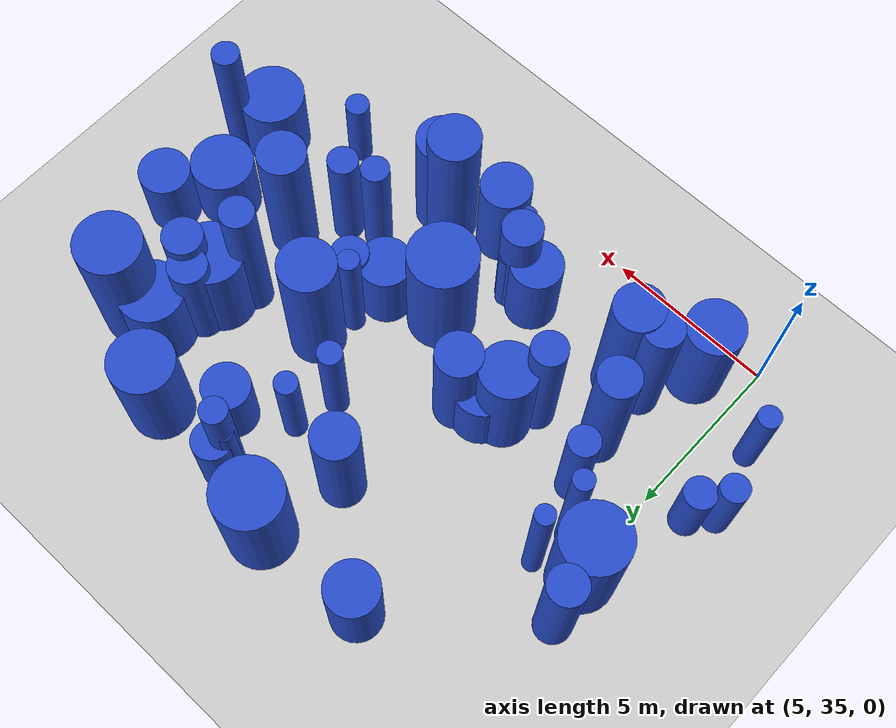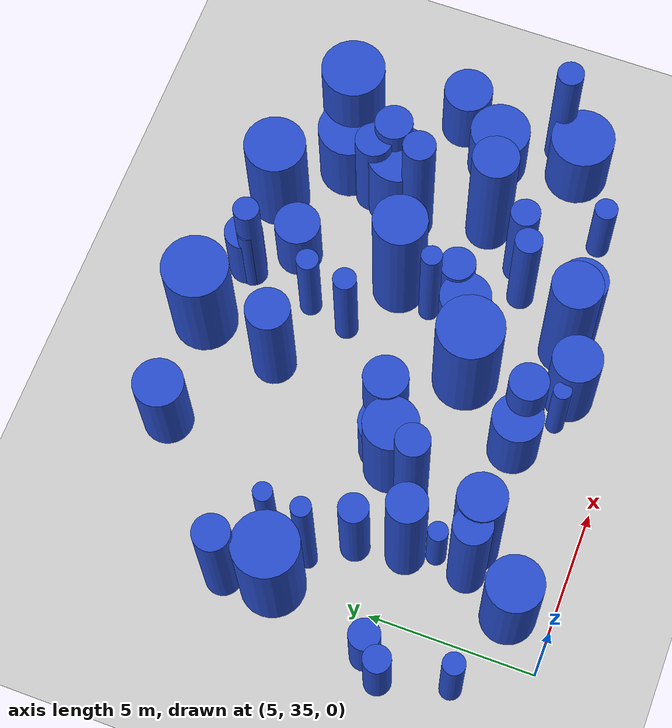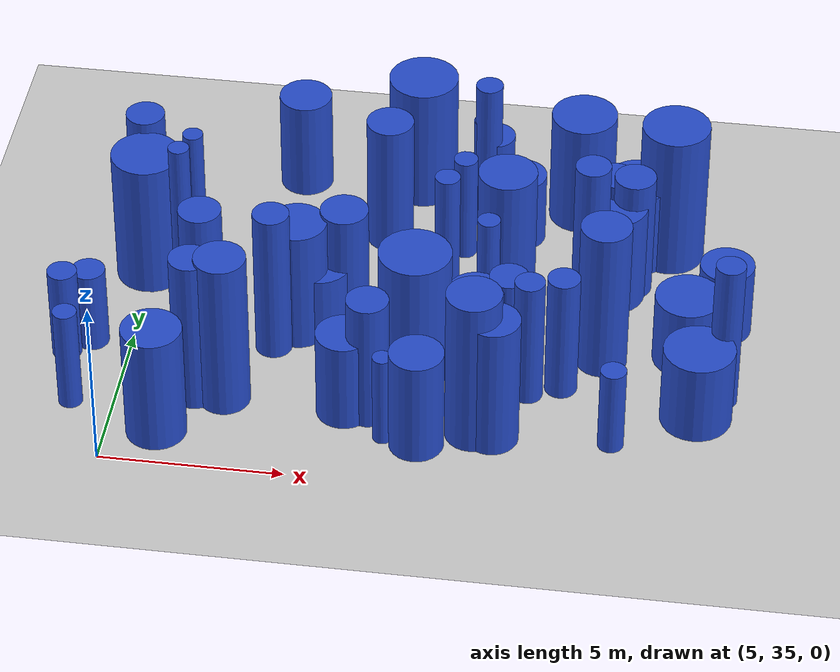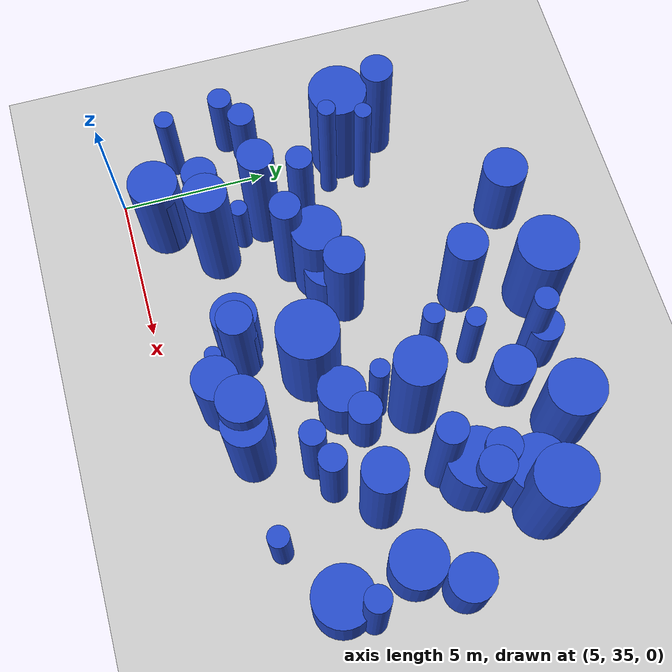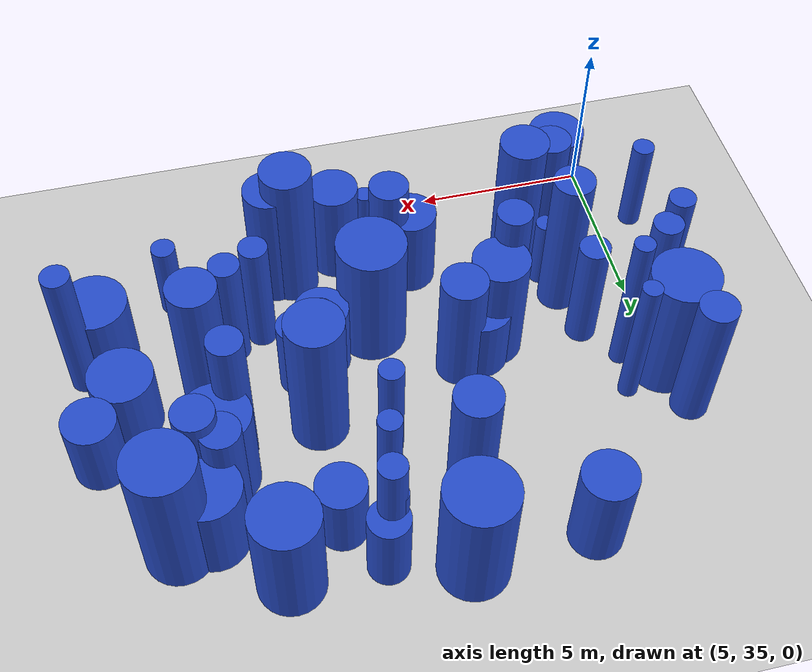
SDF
<sdf version="1.6">
 <world name="default">
  <model name="ground_plane">
   <static>1</static>
   <link name="link">
    <collision name="collision">
     <geometry><plane><normal>0 0 1</normal><size>100 100</size></plane></geometry>
     <surface><friction><ode><mu>100</mu><mu2>50</mu2></ode></friction></surface>
    </collision>
    <visual name="visual">
     <cast_shadows>0</cast_shadows>
     <geometry><plane><normal>0 0 1</normal><size>100 100</size></plane></geometry>
     <material>
      <script><uri>file://media/materials/scripts/gazebo.material</uri><name>Gazebo/Grey</name></script>
     </material>
    </visual>
   </link>
  </model>
  <model name="0">
   <static>0</static>
   <link name="link">
    <inertial>
     <mass>2</mass>
     <inertia><ixx>1.43734</ixx><ixy>0</ixy><ixz>0</ixz><iyy>1.43734</iyy><iyz>0</iyz><izz>0.944565</izz></inertia>
    </inertial>
    <collision name="collision">
     <geometry><cylinder><length>2.40632</length><radius>0.971888</radius></cylinder></geometry>
     <surface><contact><collide_without_contact>1</collide_without_contact></contact></surface>
    </collision>
    <visual name="visual">
     <geometry><cylinder><length>2.40632</length><radius>0.971888</radius></cylinder></geometry>
     <material>
      <script><uri>file://media/materials/scripts/gazebo.material</uri><name>Gazebo/Blue</name></script>
     </material>
    </visual>
    <gravity>0</gravity>
   </link>
   <pose>20.5384 38.7875 1.20316 0 -0 0</pose>
  </model>
  <model name="17">
   <static>0</static>
   <link name="link">
    <inertial>
     <mass>2</mass>
     <inertia><ixx>1.23789</ixx><ixy>0</ixy><ixz>0</ixz><iyy>1.23789</iyy><iyz>0</iyz><izz>0.598154</izz></inertia>
    </inertial>
    <collision name="collision">
     <geometry><cylinder><length>2.37337</length><radius>0.773404</radius></cylinder></geometry>
     <surface><contact><collide_without_contact>1</collide_without_contact></contact></surface>
    </collision>
    <visual name="visual">
     <geometry><cylinder><length>2.37337</length><radius>0.773404</radius></cylinder></geometry>
     <material>
      <script><uri>file://media/materials/scripts/gazebo.material</uri><name>Gazebo/Blue</name></script>
     </material>
    </visual>
    <gravity>0</gravity>
   </link>
   <pose>14.3822 40.423 1.18668 0 -0 0</pose>
  </model>
  <model name="22">
   <static>0</static>
   <link name="link">
    <inertial>
     <mass>2</mass>
     <inertia>
      <ixx>0.996712</ixx>
      <ixy>0</ixy>
      <ixz>0</ixz>
      <iyy>0.996712</iyy>
      <iyz>0</iyz>
      <izz>0.087716</izz>
     </inertia>
    </inertial>
    <collision name="collision">
     <geometry><cylinder><length>2.39105</length><radius>0.296169</radius></cylinder></geometry>
     <surface><contact><collide_without_contact>1</collide_without_contact></contact></surface>
    </collision>
    <visual name="visual">
     <geometry><cylinder><length>2.39105</length><radius>0.296169</radius></cylinder></geometry>
     <material>
      <script><uri>file://media/materials/scripts/gazebo.material</uri><name>Gazebo/Blue</name></script>
     </material>
    </visual>
    <gravity>0</gravity>
   </link>
   <pose>7.34966 38.7949 1.19553 0 -0 0</pose>
  </model>
  <model name="28">
   <static>0</static>
   <link name="link">
    <inertial>
     <mass>2</mass>
     <inertia>
      <ixx>4.08418</ixx>
      <ixy>0</ixy>
      <ixz>0</ixz>
      <iyy>4.08418</iyy>
      <iyz>0</iyz>
      <izz>0.0857833</izz>
     </inertia>
    </inertial>
    <collision name="collision">
     <geometry><cylinder><length>4.9242</length><radius>0.292888</radius></cylinder></geometry>
     <surface><contact><collide_without_contact>1</collide_without_contact></contact></surface>
    </collision>
    <visual name="visual">
     <geometry><cylinder><length>4.9242</length><radius>0.292888</radius></cylinder></geometry>
     <material>
      <script><uri>file://media/materials/scripts/gazebo.material</uri><name>Gazebo/Blue</name></script>
     </material>
    </visual>
    <gravity>0</gravity>
   </link>
   <pose>5.98766 42.2378 2.4621 0 -0 0</pose>
  </model>
  <model name="35">
   <static>0</static>
   <link name="link">
    <inertial>
     <mass>2</mass>
     <inertia><ixx>2.06592</ixx><ixy>0</ixy><ixz>0</ixz><iyy>2.06592</iyy><iyz>0</iyz><izz>0.920991</izz></inertia>
    </inertial>
    <collision name="collision">
     <geometry><cylinder><length>3.10364</length><radius>0.959683</radius></cylinder></geometry>
     <surface><contact><collide_without_contact>1</collide_without_contact></contact></surface>
    </collision>
    <visual name="visual">
     <geometry><cylinder><length>3.10364</length><radius>0.959683</radius></cylinder></geometry>
     <material>
      <script><uri>file://media/materials/scripts/gazebo.material</uri><name>Gazebo/Blue</name></script>
     </material>
    </visual>
    <gravity>0</gravity>
   </link>
   <pose>17.7601 43.7207 1.55182 0 -0 0</pose>
  </model>
  <model name="39">
   <static>0</static>
   <link name="link">
    <inertial>
     <mass>2</mass>
     <inertia><ixx>2.41207</ixx><ixy>0</ixy><ixz>0</ixz><iyy>2.41207</iyy><iyz>0</iyz><izz>0.674875</izz></inertia>
    </inertial>
    <collision name="collision">
     <geometry><cylinder><length>3.52814</length><radius>0.821508</radius></cylinder></geometry>
     <surface><contact><collide_without_contact>1</collide_without_contact></contact></surface>
    </collision>
    <visual name="visual">
     <geometry><cylinder><length>3.52814</length><radius>0.821508</radius></cylinder></geometry>
     <material>
      <script><uri>file://media/materials/scripts/gazebo.material</uri><name>Gazebo/Blue</name></script>
     </material>
    </visual>
    <gravity>0</gravity>
   </link>
   <pose>6.34437 36.277 1.76407 0 -0 0</pose>
  </model>
  <model name="41">
   <static>0</static>
   <link name="link">
    <inertial>
     <mass>2</mass>
     <inertia>
      <ixx>2.58319</ixx>
      <ixy>0</ixy>
      <ixz>0</ixz>
      <iyy>2.58319</iyy>
      <iyz>0</iyz>
      <izz>0.0988008</izz>
     </inertia>
    </inertial>
    <collision name="collision">
     <geometry><cylinder><length>3.89907</length><radius>0.314326</radius></cylinder></geometry>
     <surface><contact><collide_without_contact>1</collide_without_contact></contact></surface>
    </collision>
    <visual name="visual">
     <geometry><cylinder><length>3.89907</length><radius>0.314326</radius></cylinder></geometry>
     <material>
      <script><uri>file://media/materials/scripts/gazebo.material</uri><name>Gazebo/Blue</name></script>
     </material>
    </visual>
    <gravity>0</gravity>
   </link>
   <pose>14.5714 41.5767 1.94954 0 -0 0</pose>
  </model>
  <model name="46">
   <static>0</static>
   <link name="link">
    <inertial>
     <mass>2</mass>
     <inertia><ixx>2.99386</ixx><ixy>0</ixy><ixz>0</ixz><iyy>2.99386</iyy><iyz>0</iyz><izz>0.435719</izz></inertia>
    </inertial>
    <collision name="collision">
     <geometry><cylinder><length>4.08118</length><radius>0.66009</radius></cylinder></geometry>
     <surface><contact><collide_without_contact>1</collide_without_contact></contact></surface>
    </collision>
    <visual name="visual">
     <geometry><cylinder><length>4.08118</length><radius>0.66009</radius></cylinder></geometry>
     <material>
      <script><uri>file://media/materials/scripts/gazebo.material</uri><name>Gazebo/Blue</name></script>
     </material>
    </visual>
    <gravity>0</gravity>
   </link>
   <pose>11.3429 45.3423 2.04059 0 -0 0</pose>
  </model>
  <model name="52">
   <static>0</static>
   <link name="link">
    <inertial>
     <mass>2</mass>
     <inertia><ixx>2.62274</ixx><ixy>0</ixy><ixz>0</ixz><iyy>2.62274</iyy><iyz>0</iyz><izz>0.169861</izz></inertia>
    </inertial>
    <collision name="collision">
     <geometry><cylinder><length>3.90216</length><radius>0.412142</radius></cylinder></geometry>
     <surface><contact><collide_without_contact>1</collide_without_contact></contact></surface>
    </collision>
    <visual name="visual">
     <geometry><cylinder><length>3.90216</length><radius>0.412142</radius></cylinder></geometry>
     <material>
      <script><uri>file://media/materials/scripts/gazebo.material</uri><name>Gazebo/Blue</name></script>
     </material>
    </visual>
    <gravity>0</gravity>
   </link>
   <pose>15.9682 39.1143 1.95108 0 -0 0</pose>
  </model>
  <model name="74">
   <static>0</static>
   <link name="link">
    <inertial>
     <mass>2</mass>
     <inertia><ixx>4.12328</ixx><ixy>0</ixy><ixz>0</ixz><iyy>4.12328</iyy><iyz>0</iyz><izz>0.560126</izz></inertia>
    </inertial>
    <collision name="collision">
     <geometry><cylinder><length>4.80201</length><radius>0.748416</radius></cylinder></geometry>
     <surface><contact><collide_without_contact>1</collide_without_contact></contact></surface>
    </collision>
    <visual name="visual">
     <geometry><cylinder><length>4.80201</length><radius>0.748416</radius></cylinder></geometry>
     <material>
      <script><uri>file://media/materials/scripts/gazebo.material</uri><name>Gazebo/Blue</name></script>
     </material>
    </visual>
    <gravity>0</gravity>
   </link>
   <pose>14.6995 37.3284 2.40101 0 -0 0</pose>
  </model>
  <model name="119">
   <static>0</static>
   <link name="link">
    <inertial>
     <mass>2</mass>
     <inertia><ixx>2.38078</ixx><ixy>0</ixy><ixz>0</ixz><iyy>2.38078</iyy><iyz>0</iyz><izz>0.195556</izz></inertia>
    </inertial>
    <collision name="collision">
     <geometry><cylinder><length>3.70108</length><radius>0.442218</radius></cylinder></geometry>
     <surface><contact><collide_without_contact>1</collide_without_contact></contact></surface>
    </collision>
    <visual name="visual">
     <geometry><cylinder><length>3.70108</length><radius>0.442218</radius></cylinder></geometry>
     <material>
      <script><uri>file://media/materials/scripts/gazebo.material</uri><name>Gazebo/Blue</name></script>
     </material>
    </visual>
    <gravity>0</gravity>
   </link>
   <pose>6.79355 41.0742 1.85054 0 -0 0</pose>
  </model>
  <model name="126">
   <static>0</static>
   <link name="link">
    <inertial>
     <mass>2</mass>
     <inertia><ixx>3.16923</ixx><ixy>0</ixy><ixz>0</ixz><iyy>3.16923</iyy><iyz>0</iyz><izz>0.99439</izz></inertia>
    </inertial>
    <collision name="collision">
     <geometry><cylinder><length>4.00402</length><radius>0.997191</radius></cylinder></geometry>
     <surface><contact><collide_without_contact>1</collide_without_contact></contact></surface>
    </collision>
    <visual name="visual">
     <geometry><cylinder><length>4.00402</length><radius>0.997191</radius></cylinder></geometry>
     <material>
      <script><uri>file://media/materials/scripts/gazebo.material</uri><name>Gazebo/Blue</name></script>
     </material>
    </visual>
    <gravity>0</gravity>
   </link>
   <pose>12.8116 39.7959 2.00201 0 -0 0</pose>
  </model>
  <model name="144">
   <static>0</static>
   <link name="link">
    <inertial>
     <mass>2</mass>
     <inertia><ixx>1.21797</ixx><ixy>0</ixy><ixz>0</ixz><iyy>1.21797</iyy><iyz>0</iyz><izz>0.296682</izz></inertia>
    </inertial>
    <collision name="collision">
     <geometry><cylinder><length>2.53334</length><radius>0.544685</radius></cylinder></geometry>
     <surface><contact><collide_without_contact>1</collide_without_contact></contact></surface>
    </collision>
    <visual name="visual">
     <geometry><cylinder><length>2.53334</length><radius>0.544685</radius></cylinder></geometry>
     <material>
      <script><uri>file://media/materials/scripts/gazebo.material</uri><name>Gazebo/Blue</name></script>
     </material>
    </visual>
    <gravity>0</gravity>
   </link>
   <pose>15.2183 40.9566 1.26667 0 -0 0</pose>
  </model>
  <model name="145">
   <static>0</static>
   <link name="link">
    <inertial>
     <mass>2</mass>
     <inertia><ixx>1.72</ixx><ixy>0</ixy><ixz>0</ixz><iyy>1.72</iyy><iyz>0</iyz><izz>0.363739</izz></inertia>
    </inertial>
    <collision name="collision">
     <geometry><cylinder><length>3.03789</length><radius>0.603108</radius></cylinder></geometry>
     <surface><contact><collide_without_contact>1</collide_without_contact></contact></surface>
    </collision>
    <visual name="visual">
     <geometry><cylinder><length>3.03789</length><radius>0.603108</radius></cylinder></geometry>
     <material>
      <script><uri>file://media/materials/scripts/gazebo.material</uri><name>Gazebo/Blue</name></script>
     </material>
    </visual>
    <gravity>0</gravity>
   </link>
   <pose>6.54316 36.3832 1.51895 0 -0 0</pose>
  </model>
  <model name="151">
   <static>0</static>
   <link name="link">
    <inertial>
     <mass>2</mass>
     <inertia><ixx>4.1732</ixx><ixy>0</ixy><ixz>0</ixz><iyy>4.1732</iyy><iyz>0</iyz><izz>0.497658</izz></inertia>
    </inertial>
    <collision name="collision">
     <geometry><cylinder><length>4.85245</length><radius>0.705449</radius></cylinder></geometry>
     <surface><contact><collide_without_contact>1</collide_without_contact></contact></surface>
    </collision>
    <visual name="visual">
     <geometry><cylinder><length>4.85245</length><radius>0.705449</radius></cylinder></geometry>
     <material>
      <script><uri>file://media/materials/scripts/gazebo.material</uri><name>Gazebo/Blue</name></script>
     </material>
    </visual>
    <gravity>0</gravity>
   </link>
   <pose>7.91534 37.8162 2.42622 0 -0 0</pose>
  </model>
  <model name="155">
   <static>0</static>
   <link name="link">
    <inertial>
     <mass>2</mass>
     <inertia><ixx>3.02453</ixx><ixy>0</ixy><ixz>0</ixz><iyy>3.02453</iyy><iyz>0</iyz><izz>0.528307</izz></inertia>
    </inertial>
    <collision name="collision">
     <geometry><cylinder><length>4.06967</length><radius>0.726847</radius></cylinder></geometry>
     <surface><contact><collide_without_contact>1</collide_without_contact></contact></surface>
    </collision>
    <visual name="visual">
     <geometry><cylinder><length>4.06967</length><radius>0.726847</radius></cylinder></geometry>
     <material>
      <script><uri>file://media/materials/scripts/gazebo.material</uri><name>Gazebo/Blue</name></script>
     </material>
    </visual>
    <gravity>0</gravity>
   </link>
   <pose>15.2238 37.2459 2.03484 0 -0 0</pose>
  </model>
  <model name="189">
   <static>0</static>
   <link name="link">
    <inertial>
     <mass>2</mass>
     <inertia><ixx>2.68004</ixx><ixy>0</ixy><ixz>0</ixz><iyy>2.68004</iyy><iyz>0</iyz><izz>0.666747</izz></inertia>
    </inertial>
    <collision name="collision">
     <geometry><cylinder><length>3.75233</length><radius>0.816545</radius></cylinder></geometry>
     <surface><contact><collide_without_contact>1</collide_without_contact></contact></surface>
    </collision>
    <visual name="visual">
     <geometry><cylinder><length>3.75233</length><radius>0.816545</radius></cylinder></geometry>
     <material>
      <script><uri>file://media/materials/scripts/gazebo.material</uri><name>Gazebo/Blue</name></script>
     </material>
    </visual>
    <gravity>0</gravity>
   </link>
   <pose>9.43595 40.9496 1.87617 0 -0 0</pose>
  </model>
  <model name="193">
   <static>0</static>
   <link name="link">
    <inertial>
     <mass>2</mass>
     <inertia><ixx>2.65089</ixx><ixy>0</ixy><ixz>0</ixz><iyy>2.65089</iyy><iyz>0</iyz><izz>0.332017</izz></inertia>
    </inertial>
    <collision name="collision">
     <geometry><cylinder><length>3.86126</length><radius>0.576209</radius></cylinder></geometry>
     <surface><contact><collide_without_contact>1</collide_without_contact></contact></surface>
    </collision>
    <visual name="visual">
     <geometry><cylinder><length>3.86126</length><radius>0.576209</radius></cylinder></geometry>
     <material>
      <script><uri>file://media/materials/scripts/gazebo.material</uri><name>Gazebo/Blue</name></script>
     </material>
    </visual>
    <gravity>0</gravity>
   </link>
   <pose>18.3004 44.0764 1.93063 0 -0 0</pose>
  </model>
  <model name="194">
   <static>0</static>
   <link name="link">
    <inertial>
     <mass>2</mass>
     <inertia><ixx>4.05304</ixx><ixy>0</ixy><ixz>0</ixz><iyy>4.05304</iyy><iyz>0</iyz><izz>0.652866</izz></inertia>
    </inertial>
    <collision name="collision">
     <geometry><cylinder><length>4.7286</length><radius>0.808001</radius></cylinder></geometry>
     <surface><contact><collide_without_contact>1</collide_without_contact></contact></surface>
    </collision>
    <visual name="visual">
     <geometry><cylinder><length>4.7286</length><radius>0.808001</radius></cylinder></geometry>
     <material>
      <script><uri>file://media/materials/scripts/gazebo.material</uri><name>Gazebo/Blue</name></script>
     </material>
    </visual>
    <gravity>0</gravity>
   </link>
   <pose>14.9409 42.6739 2.3643 0 -0 0</pose>
  </model>
  <model name="213">
   <static>0</static>
   <link name="link">
    <inertial>
     <mass>2</mass>
     <inertia><ixx>3.94195</ixx><ixy>0</ixy><ixz>0</ixz><iyy>3.94195</iyy><iyz>0</iyz><izz>0.316712</izz></inertia>
    </inertial>
    <collision name="collision">
     <geometry><cylinder><length>4.76462</length><radius>0.562771</radius></cylinder></geometry>
     <surface><contact><collide_without_contact>1</collide_without_contact></contact></surface>
    </collision>
    <visual name="visual">
     <geometry><cylinder><length>4.76462</length><radius>0.562771</radius></cylinder></geometry>
     <material>
      <script><uri>file://media/materials/scripts/gazebo.material</uri><name>Gazebo/Blue</name></script>
     </material>
    </visual>
    <gravity>0</gravity>
   </link>
   <pose>7.11286 37.7974 2.38231 0 -0 0</pose>
  </model>
  <model name="242">
   <static>0</static>
   <link name="link">
    <inertial>
     <mass>2</mass>
     <inertia><ixx>1.17404</ixx><ixy>0</ixy><ixz>0</ixz><iyy>1.17404</iyy><iyz>0</iyz><izz>0.329321</izz></inertia>
    </inertial>
    <collision name="collision">
     <geometry><cylinder><length>2.46095</length><radius>0.573865</radius></cylinder></geometry>
     <surface><contact><collide_without_contact>1</collide_without_contact></contact></surface>
    </collision>
    <visual name="visual">
     <geometry><cylinder><length>2.46095</length><radius>0.573865</radius></cylinder></geometry>
     <material>
      <script><uri>file://media/materials/scripts/gazebo.material</uri><name>Gazebo/Blue</name></script>
     </material>
    </visual>
    <gravity>0</gravity>
   </link>
   <pose>14.0639 47.271 1.23048 0 -0 0</pose>
  </model>
  <model name="243">
   <static>0</static>
   <link name="link">
    <inertial>
     <mass>2</mass>
     <inertia><ixx>4.2741</ixx><ixy>0</ixy><ixz>0</ixz><iyy>4.2741</iyy><iyz>0</iyz><izz>0.240077</izz></inertia>
    </inertial>
    <collision name="collision">
     <geometry><cylinder><length>4.99243</length><radius>0.489977</radius></cylinder></geometry>
     <surface><contact><collide_without_contact>1</collide_without_contact></contact></surface>
    </collision>
    <visual name="visual">
     <geometry><cylinder><length>4.99243</length><radius>0.489977</radius></cylinder></geometry>
     <material>
      <script><uri>file://media/materials/scripts/gazebo.material</uri><name>Gazebo/Blue</name></script>
     </material>
    </visual>
    <gravity>0</gravity>
   </link>
   <pose>17.2259 42.9222 2.49622 0 -0 0</pose>
  </model>
  <model name="268">
   <static>0</static>
   <link name="link">
    <inertial>
     <mass>2</mass>
     <inertia><ixx>2.68272</ixx><ixy>0</ixy><ixz>0</ixz><iyy>2.68272</iyy><iyz>0</iyz><izz>0.437965</izz></inertia>
    </inertial>
    <collision name="collision">
     <geometry><cylinder><length>3.84479</length><radius>0.661789</radius></cylinder></geometry>
     <surface><contact><collide_without_contact>1</collide_without_contact></contact></surface>
    </collision>
    <visual name="visual">
     <geometry><cylinder><length>3.84479</length><radius>0.661789</radius></cylinder></geometry>
     <material>
      <script><uri>file://media/materials/scripts/gazebo.material</uri><name>Gazebo/Blue</name></script>
     </material>
    </visual>
    <gravity>0</gravity>
   </link>
   <pose>10.6363 41.5399 1.9224 0 -0 0</pose>
  </model>
  <model name="277">
   <static>0</static>
   <link name="link">
    <inertial>
     <mass>2</mass>
     <inertia><ixx>1.83227</ixx><ixy>0</ixy><ixz>0</ixz><iyy>1.83227</iyy><iyz>0</iyz><izz>0.113422</izz></inertia>
    </inertial>
    <collision name="collision">
     <geometry><cylinder><length>3.26395</length><radius>0.336781</radius></cylinder></geometry>
     <surface><contact><collide_without_contact>1</collide_without_contact></contact></surface>
    </collision>
    <visual name="visual">
     <geometry><cylinder><length>3.26395</length><radius>0.336781</radius></cylinder></geometry>
     <material>
      <script><uri>file://media/materials/scripts/gazebo.material</uri><name>Gazebo/Blue</name></script>
     </material>
    </visual>
    <gravity>0</gravity>
   </link>
   <pose>13.5131 45.0063 1.63197 0 -0 0</pose>
  </model>
  <model name="286">
   <static>0</static>
   <link name="link">
    <inertial>
     <mass>2</mass>
     <inertia><ixx>2.97201</ixx><ixy>0</ixy><ixz>0</ixz><iyy>2.97201</iyy><iyz>0</iyz><izz>0.968598</izz></inertia>
    </inertial>
    <collision name="collision">
     <geometry><cylinder><length>3.86346</length><radius>0.984174</radius></cylinder></geometry>
     <surface><contact><collide_without_contact>1</collide_without_contact></contact></surface>
    </collision>
    <visual name="visual">
     <geometry><cylinder><length>3.86346</length><radius>0.984174</radius></cylinder></geometry>
     <material>
      <script><uri>file://media/materials/scripts/gazebo.material</uri><name>Gazebo/Blue</name></script>
     </material>
    </visual>
    <gravity>0</gravity>
   </link>
   <pose>11.9458 47.8225 1.93173 0 -0 0</pose>
  </model>
  <model name="292">
   <static>0</static>
   <link name="link">
    <inertial>
     <mass>2</mass>
     <inertia><ixx>3.86972</ixx><ixy>0</ixy><ixz>0</ixz><iyy>3.86972</iyy><iyz>0</iyz><izz>0.485505</izz></inertia>
    </inertial>
    <collision name="collision">
     <geometry><cylinder><length>4.66495</length><radius>0.696782</radius></cylinder></geometry>
     <surface><contact><collide_without_contact>1</collide_without_contact></contact></surface>
    </collision>
    <visual name="visual">
     <geometry><cylinder><length>4.66495</length><radius>0.696782</radius></cylinder></geometry>
     <material>
      <script><uri>file://media/materials/scripts/gazebo.material</uri><name>Gazebo/Blue</name></script>
     </material>
    </visual>
    <gravity>0</gravity>
   </link>
   <pose>17.8039 40.777 2.33248 0 -0 0</pose>
  </model>
  <model name="322">
   <static>0</static>
   <link name="link">
    <inertial>
     <mass>2</mass>
     <inertia><ixx>1.41328</ixx><ixy>0</ixy><ixz>0</ixz><iyy>1.41328</iyy><iyz>0</iyz><izz>0.164205</izz></inertia>
    </inertial>
    <collision name="collision">
     <geometry><cylinder><length>2.82614</length><radius>0.405223</radius></cylinder></geometry>
     <surface><contact><collide_without_contact>1</collide_without_contact></contact></surface>
    </collision>
    <visual name="visual">
     <geometry><cylinder><length>2.82614</length><radius>0.405223</radius></cylinder></geometry>
     <material>
      <script><uri>file://media/materials/scripts/gazebo.material</uri><name>Gazebo/Blue</name></script>
     </material>
    </visual>
    <gravity>0</gravity>
   </link>
   <pose>3.309 39.1192 1.41307 0 -0 0</pose>
  </model>
  <model name="324">
   <static>0</static>
   <link name="link">
    <inertial>
     <mass>2</mass>
     <inertia><ixx>1.80357</ixx><ixy>0</ixy><ixz>0</ixz><iyy>1.80357</iyy><iyz>0</iyz><izz>0.561204</izz></inertia>
    </inertial>
    <collision name="collision">
     <geometry><cylinder><length>3.02288</length><radius>0.749135</radius></cylinder></geometry>
     <surface><contact><collide_without_contact>1</collide_without_contact></contact></surface>
    </collision>
    <visual name="visual">
     <geometry><cylinder><length>3.02288</length><radius>0.749135</radius></cylinder></geometry>
     <material>
      <script><uri>file://media/materials/scripts/gazebo.material</uri><name>Gazebo/Blue</name></script>
     </material>
    </visual>
    <gravity>0</gravity>
   </link>
   <pose>8.57292 47.6417 1.51144 0 -0 0</pose>
  </model>
  <model name="327">
   <static>0</static>
   <link name="link">
    <inertial>
     <mass>2</mass>
     <inertia><ixx>1.93959</ixx><ixy>0</ixy><ixz>0</ixz><iyy>1.93959</iyy><iyz>0</iyz><izz>0.55048</izz></inertia>
    </inertial>
    <collision name="collision">
     <geometry><cylinder><length>3.16008</length><radius>0.741943</radius></cylinder></geometry>
     <surface><contact><collide_without_contact>1</collide_without_contact></contact></surface>
    </collision>
    <visual name="visual">
     <geometry><cylinder><length>3.16008</length><radius>0.741943</radius></cylinder></geometry>
     <material>
      <script><uri>file://media/materials/scripts/gazebo.material</uri><name>Gazebo/Blue</name></script>
     </material>
    </visual>
    <gravity>0</gravity>
   </link>
   <pose>13.2776 36.7076 1.58004 0 -0 0</pose>
  </model>
  <model name="329">
   <static>0</static>
   <link name="link">
    <inertial>
     <mass>2</mass>
     <inertia><ixx>3.68694</ixx><ixy>0</ixy><ixz>0</ixz><iyy>3.68694</iyy><iyz>0</iyz><izz>0.252418</izz></inertia>
    </inertial>
    <collision name="collision">
     <geometry><cylinder><length>4.62216</length><radius>0.502412</radius></cylinder></geometry>
     <surface><contact><collide_without_contact>1</collide_without_contact></contact></surface>
    </collision>
    <visual name="visual">
     <geometry><cylinder><length>4.62216</length><radius>0.502412</radius></cylinder></geometry>
     <material>
      <script><uri>file://media/materials/scripts/gazebo.material</uri><name>Gazebo/Blue</name></script>
     </material>
    </visual>
    <gravity>0</gravity>
   </link>
   <pose>8.87397 40.1219 2.31108 0 -0 0</pose>
  </model>
  <model name="331">
   <static>0</static>
   <link name="link">
    <inertial>
     <mass>2</mass>
     <inertia><ixx>1.19639</ixx><ixy>0</ixy><ixz>0</ixz><iyy>1.19639</iyy><iyz>0</iyz><izz>0.844158</izz></inertia>
    </inertial>
    <collision name="collision">
     <geometry><cylinder><length>2.15543</length><radius>0.918781</radius></cylinder></geometry>
     <surface><contact><collide_without_contact>1</collide_without_contact></contact></surface>
    </collision>
    <visual name="visual">
     <geometry><cylinder><length>2.15543</length><radius>0.918781</radius></cylinder></geometry>
     <material>
      <script><uri>file://media/materials/scripts/gazebo.material</uri><name>Gazebo/Blue</name></script>
     </material>
    </visual>
    <gravity>0</gravity>
   </link>
   <pose>20.0674 41.2527 1.07772 0 -0 0</pose>
  </model>
  <model name="347">
   <static>0</static>
   <link name="link">
    <inertial>
     <mass>2</mass>
     <inertia><ixx>1.66507</ixx><ixy>0</ixy><ixz>0</ixz><iyy>1.66507</iyy><iyz>0</iyz><izz>0.107337</izz></inertia>
    </inertial>
    <collision name="collision">
     <geometry><cylinder><length>3.10941</length><radius>0.327624</radius></cylinder></geometry>
     <surface><contact><collide_without_contact>1</collide_without_contact></contact></surface>
    </collision>
    <visual name="visual">
     <geometry><cylinder><length>3.10941</length><radius>0.327624</radius></cylinder></geometry>
     <material>
      <script><uri>file://media/materials/scripts/gazebo.material</uri><name>Gazebo/Blue</name></script>
     </material>
    </visual>
    <gravity>0</gravity>
   </link>
   <pose>3.82871 37.124 1.5547 0 -0 0</pose>
  </model>
  <model name="375">
   <static>0</static>
   <link name="link">
    <inertial>
     <mass>2</mass>
     <inertia><ixx>1.03271</ixx><ixy>0</ixy><ixz>0</ixz><iyy>1.03271</iyy><iyz>0</iyz><izz>0.48484</izz></inertia>
    </inertial>
    <collision name="collision">
     <geometry><cylinder><length>2.17755</length><radius>0.696305</radius></cylinder></geometry>
     <surface><contact><collide_without_contact>1</collide_without_contact></contact></surface>
    </collision>
    <visual name="visual">
     <geometry><cylinder><length>2.17755</length><radius>0.696305</radius></cylinder></geometry>
     <material>
      <script><uri>file://media/materials/scripts/gazebo.material</uri><name>Gazebo/Blue</name></script>
     </material>
    </visual>
    <gravity>0</gravity>
   </link>
   <pose>14.9949 45.9351 1.08877 0 -0 0</pose>
  </model>
  <model name="376">
   <static>0</static>
   <link name="link">
    <inertial>
     <mass>2</mass>
     <inertia>
      <ixx>1.15832</ixx>
      <ixy>0</ixy>
      <ixz>0</ixz>
      <iyy>1.15832</iyy>
      <iyz>0</iyz>
      <izz>0.0799836</izz>
     </inertia>
    </inertial>
    <collision name="collision">
     <geometry><cylinder><length>2.59036</length><radius>0.282814</radius></cylinder></geometry>
     <surface><contact><collide_without_contact>1</collide_without_contact></contact></surface>
    </collision>
    <visual name="visual">
     <geometry><cylinder><length>2.59036</length><radius>0.282814</radius></cylinder></geometry>
     <material>
      <script><uri>file://media/materials/scripts/gazebo.material</uri><name>Gazebo/Blue</name></script>
     </material>
    </visual>
    <gravity>0</gravity>
   </link>
   <pose>11.9286 38.056 1.29518 0 -0 0</pose>
  </model>
  <model name="379">
   <static>0</static>
   <link name="link">
    <inertial>
     <mass>2</mass>
     <inertia><ixx>2.4728</ixx><ixy>0</ixy><ixz>0</ixz><iyy>2.4728</iyy><iyz>0</iyz><izz>0.858287</izz></inertia>
    </inertial>
    <collision name="collision">
     <geometry><cylinder><length>3.50171</length><radius>0.926438</radius></cylinder></geometry>
     <surface><contact><collide_without_contact>1</collide_without_contact></contact></surface>
    </collision>
    <visual name="visual">
     <geometry><cylinder><length>3.50171</length><radius>0.926438</radius></cylinder></geometry>
     <material>
      <script><uri>file://media/materials/scripts/gazebo.material</uri><name>Gazebo/Blue</name></script>
     </material>
    </visual>
    <gravity>0</gravity>
   </link>
   <pose>16.5927 47.2035 1.75085 0 -0 0</pose>
  </model>
  <model name="389">
   <static>0</static>
   <link name="link">
    <inertial>
     <mass>2</mass>
     <inertia><ixx>3.81673</ixx><ixy>0</ixy><ixz>0</ixz><iyy>3.81673</iyy><iyz>0</iyz><izz>0.899217</izz></inertia>
    </inertial>
    <collision name="collision">
     <geometry><cylinder><length>4.49475</length><radius>0.948271</radius></cylinder></geometry>
     <surface><contact><collide_without_contact>1</collide_without_contact></contact></surface>
    </collision>
    <visual name="visual">
     <geometry><cylinder><length>4.49475</length><radius>0.948271</radius></cylinder></geometry>
     <material>
      <script><uri>file://media/materials/scripts/gazebo.material</uri><name>Gazebo/Blue</name></script>
     </material>
    </visual>
    <gravity>0</gravity>
   </link>
   <pose>19.2607 45.7015 2.24737 0 -0 0</pose>
  </model>
  <model name="390">
   <static>0</static>
   <link name="link">
    <inertial>
     <mass>2</mass>
     <inertia><ixx>3.28863</ixx><ixy>0</ixy><ixz>0</ixz><iyy>3.28863</iyy><iyz>0</iyz><izz>0.145973</izz></inertia>
    </inertial>
    <collision name="collision">
     <geometry><cylinder><length>4.39247</length><radius>0.382064</radius></cylinder></geometry>
     <surface><contact><collide_without_contact>1</collide_without_contact></contact></surface>
    </collision>
    <visual name="visual">
     <geometry><cylinder><length>4.39247</length><radius>0.382064</radius></cylinder></geometry>
     <material>
      <script><uri>file://media/materials/scripts/gazebo.material</uri><name>Gazebo/Blue</name></script>
     </material>
    </visual>
    <gravity>0</gravity>
   </link>
   <pose>13.9153 46.9911 2.19624 0 -0 0</pose>
  </model>
  <model name="394">
   <static>0</static>
   <link name="link">
    <inertial>
     <mass>2</mass>
     <inertia><ixx>2.53288</ixx><ixy>0</ixy><ixz>0</ixz><iyy>2.53288</iyy><iyz>0</iyz><izz>0.1971</izz></inertia>
    </inertial>
    <collision name="collision">
     <geometry><cylinder><length>3.82178</length><radius>0.44396</radius></cylinder></geometry>
     <surface><contact><collide_without_contact>1</collide_without_contact></contact></surface>
    </collision>
    <visual name="visual">
     <geometry><cylinder><length>3.82178</length><radius>0.44396</radius></cylinder></geometry>
     <material>
      <script><uri>file://media/materials/scripts/gazebo.material</uri><name>Gazebo/Blue</name></script>
     </material>
    </visual>
    <gravity>0</gravity>
   </link>
   <pose>16.8317 39.4926 1.91089 0 -0 0</pose>
  </model>
  <model name="399">
   <static>0</static>
   <link name="link">
    <inertial>
     <mass>2</mass>
     <inertia><ixx>3.6907</ixx><ixy>0</ixy><ixz>0</ixz><iyy>3.6907</iyy><iyz>0</iyz><izz>0.162625</izz></inertia>
    </inertial>
    <collision name="collision">
     <geometry><cylinder><length>4.65364</length><radius>0.403268</radius></cylinder></geometry>
     <surface><contact><collide_without_contact>1</collide_without_contact></contact></surface>
    </collision>
    <visual name="visual">
     <geometry><cylinder><length>4.65364</length><radius>0.403268</radius></cylinder></geometry>
     <material>
      <script><uri>file://media/materials/scripts/gazebo.material</uri><name>Gazebo/Blue</name></script>
     </material>
    </visual>
    <gravity>0</gravity>
   </link>
   <pose>21.1868 39.606 2.32682 0 -0 0</pose>
  </model>
  <model name="403">
   <static>0</static>
   <link name="link">
    <inertial>
     <mass>2</mass>
     <inertia><ixx>2.22161</ixx><ixy>0</ixy><ixz>0</ixz><iyy>2.22161</iyy><iyz>0</iyz><izz>0.319722</izz></inertia>
    </inertial>
    <collision name="collision">
     <geometry><cylinder><length>3.51717</length><radius>0.56544</radius></cylinder></geometry>
     <surface><contact><collide_without_contact>1</collide_without_contact></contact></surface>
    </collision>
    <visual name="visual">
     <geometry><cylinder><length>3.51717</length><radius>0.56544</radius></cylinder></geometry>
     <material>
      <script><uri>file://media/materials/scripts/gazebo.material</uri><name>Gazebo/Blue</name></script>
     </material>
    </visual>
    <gravity>0</gravity>
   </link>
   <pose>17.7313 44.5038 1.75859 0 -0 0</pose>
  </model>
  <model name="405">
   <static>0</static>
   <link name="link">
    <inertial>
     <mass>2</mass>
     <inertia>
      <ixx>1.67902</ixx>
      <ixy>0</ixy>
      <ixz>0</ixz>
      <iyy>1.67902</iyy>
      <iyz>0</iyz>
      <izz>0.0839139</izz>
     </inertia>
    </inertial>
    <collision name="collision">
     <geometry><cylinder><length>3.13407</length><radius>0.289679</radius></cylinder></geometry>
     <surface><contact><collide_without_contact>1</collide_without_contact></contact></surface>
    </collision>
    <visual name="visual">
     <geometry><cylinder><length>3.13407</length><radius>0.289679</radius></cylinder></geometry>
     <material>
      <script><uri>file://media/materials/scripts/gazebo.material</uri><name>Gazebo/Blue</name></script>
     </material>
    </visual>
    <gravity>0</gravity>
   </link>
   <pose>13.7824 47.011 1.56703 0 -0 0</pose>
  </model>
  <model name="419">
   <static>0</static>
   <link name="link">
    <inertial>
     <mass>2</mass>
     <inertia><ixx>4.22436</ixx><ixy>0</ixy><ixz>0</ixz><iyy>4.22436</iyy><iyz>0</iyz><izz>0.344336</izz></inertia>
    </inertial>
    <collision name="collision">
     <geometry><cylinder><length>4.93083</length><radius>0.586802</radius></cylinder></geometry>
     <surface><contact><collide_without_contact>1</collide_without_contact></contact></surface>
    </collision>
    <visual name="visual">
     <geometry><cylinder><length>4.93083</length><radius>0.586802</radius></cylinder></geometry>
     <material>
      <script><uri>file://media/materials/scripts/gazebo.material</uri><name>Gazebo/Blue</name></script>
     </material>
    </visual>
    <gravity>0</gravity>
   </link>
   <pose>7.05064 39.6338 2.46542 0 -0 0</pose>
  </model>
  <model name="421">
   <static>0</static>
   <link name="link">
    <inertial>
     <mass>2</mass>
     <inertia><ixx>3.4074</ixx><ixy>0</ixy><ixz>0</ixz><iyy>3.4074</iyy><iyz>0</iyz><izz>0.292425</izz></inertia>
    </inertial>
    <collision name="collision">
     <geometry><cylinder><length>4.42347</length><radius>0.540763</radius></cylinder></geometry>
     <surface><contact><collide_without_contact>1</collide_without_contact></contact></surface>
    </collision>
    <visual name="visual">
     <geometry><cylinder><length>4.42347</length><radius>0.540763</radius></cylinder></geometry>
     <material>
      <script><uri>file://media/materials/scripts/gazebo.material</uri><name>Gazebo/Blue</name></script>
     </material>
    </visual>
    <gravity>0</gravity>
   </link>
   <pose>4.64154 44.3014 2.21174 0 -0 0</pose>
  </model>
  <model name="422">
   <static>0</static>
   <link name="link">
    <inertial>
     <mass>2</mass>
     <inertia><ixx>2.75162</ixx><ixy>0</ixy><ixz>0</ixz><iyy>2.75162</iyy><iyz>0</iyz><izz>0.332383</izz></inertia>
    </inertial>
    <collision name="collision">
     <geometry><cylinder><length>3.9386</length><radius>0.576526</radius></cylinder></geometry>
     <surface><contact><collide_without_contact>1</collide_without_contact></contact></surface>
    </collision>
    <visual name="visual">
     <geometry><cylinder><length>3.9386</length><radius>0.576526</radius></cylinder></geometry>
     <material>
      <script><uri>file://media/materials/scripts/gazebo.material</uri><name>Gazebo/Blue</name></script>
     </material>
    </visual>
    <gravity>0</gravity>
   </link>
   <pose>11.832 37.7366 1.9693 0 -0 0</pose>
  </model>
  <model name="427">
   <static>0</static>
   <link name="link">
    <inertial>
     <mass>2</mass>
     <inertia><ixx>1.13532</ixx><ixy>0</ixy><ixz>0</ixz><iyy>1.13532</iyy><iyz>0</iyz><izz>0.210991</izz></inertia>
    </inertial>
    <collision name="collision">
     <geometry><cylinder><length>2.48575</length><radius>0.459338</radius></cylinder></geometry>
     <surface><contact><collide_without_contact>1</collide_without_contact></contact></surface>
    </collision>
    <visual name="visual">
     <geometry><cylinder><length>2.48575</length><radius>0.459338</radius></cylinder></geometry>
     <material>
      <script><uri>file://media/materials/scripts/gazebo.material</uri><name>Gazebo/Blue</name></script>
     </material>
    </visual>
    <gravity>0</gravity>
   </link>
   <pose>3.89561 39.699 1.24288 0 -0 0</pose>
  </model>
  <model name="431">
   <static>0</static>
   <link name="link">
    <inertial>
     <mass>2</mass>
     <inertia><ixx>3.29368</ixx><ixy>0</ixy><ixz>0</ixz><iyy>3.29368</iyy><iyz>0</iyz><izz>0.92605</izz></inertia>
    </inertial>
    <collision name="collision">
     <geometry><cylinder><length>4.12115</length><radius>0.962315</radius></cylinder></geometry>
     <surface><contact><collide_without_contact>1</collide_without_contact></contact></surface>
    </collision>
    <visual name="visual">
     <geometry><cylinder><length>4.12115</length><radius>0.962315</radius></cylinder></geometry>
     <material>
      <script><uri>file://media/materials/scripts/gazebo.material</uri><name>Gazebo/Blue</name></script>
     </material>
    </visual>
    <gravity>0</gravity>
   </link>
   <pose>4.91511 42.8822 2.06058 0 -0 0</pose>
  </model>
  <model name="434">
   <static>0</static>
   <link name="link">
    <inertial>
     <mass>2</mass>
     <inertia><ixx>1.17357</ixx><ixy>0</ixy><ixz>0</ixz><iyy>1.17357</iyy><iyz>0</iyz><izz>0.12335</izz></inertia>
    </inertial>
    <collision name="collision">
     <geometry><cylinder><length>2.58289</length><radius>0.351212</radius></cylinder></geometry>
     <surface><contact><collide_without_contact>1</collide_without_contact></contact></surface>
    </collision>
    <visual name="visual">
     <geometry><cylinder><length>2.58289</length><radius>0.351212</radius></cylinder></geometry>
     <material>
      <script><uri>file://media/materials/scripts/gazebo.material</uri><name>Gazebo/Blue</name></script>
     </material>
    </visual>
    <gravity>0</gravity>
   </link>
   <pose>18.3859 37.3972 1.29145 0 -0 0</pose>
  </model>
  <model name="445">
   <static>0</static>
   <link name="link">
    <inertial>
     <mass>2</mass>
     <inertia><ixx>1.61553</ixx><ixy>0</ixy><ixz>0</ixz><iyy>1.61553</iyy><iyz>0</iyz><izz>0.903792</izz></inertia>
    </inertial>
    <collision name="collision">
     <geometry><cylinder><length>2.64231</length><radius>0.95068</radius></cylinder></geometry>
     <surface><contact><collide_without_contact>1</collide_without_contact></contact></surface>
    </collision>
    <visual name="visual">
     <geometry><cylinder><length>2.64231</length><radius>0.95068</radius></cylinder></geometry>
     <material>
      <script><uri>file://media/materials/scripts/gazebo.material</uri><name>Gazebo/Blue</name></script>
     </material>
    </visual>
    <gravity>0</gravity>
   </link>
   <pose>18.3184 45.5127 1.32116 0 -0 0</pose>
  </model>
  <model name="450">
   <static>0</static>
   <link name="link">
    <inertial>
     <mass>2</mass>
     <inertia><ixx>2.19662</ixx><ixy>0</ixy><ixz>0</ixz><iyy>2.19662</iyy><iyz>0</iyz><izz>0.123931</izz></inertia>
    </inertial>
    <collision name="collision">
     <geometry><cylinder><length>3.57882</length><radius>0.352039</radius></cylinder></geometry>
     <surface><contact><collide_without_contact>1</collide_without_contact></contact></surface>
    </collision>
    <visual name="visual">
     <geometry><cylinder><length>3.57882</length><radius>0.352039</radius></cylinder></geometry>
     <material>
      <script><uri>file://media/materials/scripts/gazebo.material</uri><name>Gazebo/Blue</name></script>
     </material>
    </visual>
    <gravity>0</gravity>
   </link>
   <pose>13.1697 43.7175 1.78941 0 -0 0</pose>
  </model>
  <model name="451">
   <static>0</static>
   <link name="link">
    <inertial>
     <mass>2</mass>
     <inertia><ixx>1.43869</ixx><ixy>0</ixy><ixz>0</ixz><iyy>1.43869</iyy><iyz>0</iyz><izz>0.224033</izz></inertia>
    </inertial>
    <collision name="collision">
     <geometry><cylinder><length>2.82135</length><radius>0.473321</radius></cylinder></geometry>
     <surface><contact><collide_without_contact>1</collide_without_contact></contact></surface>
    </collision>
    <visual name="visual">
     <geometry><cylinder><length>2.82135</length><radius>0.473321</radius></cylinder></geometry>
     <material>
      <script><uri>file://media/materials/scripts/gazebo.material</uri><name>Gazebo/Blue</name></script>
     </material>
    </visual>
    <gravity>0</gravity>
   </link>
   <pose>11.7782 47.477 1.41068 0 -0 0</pose>
  </model>
  <model name="459">
   <static>0</static>
   <link name="link">
    <inertial>
     <mass>2</mass>
     <inertia><ixx>1.17808</ixx><ixy>0</ixy><ixz>0</ixz><iyy>1.17808</iyy><iyz>0</iyz><izz>0.78352</izz></inertia>
    </inertial>
    <collision name="collision">
     <geometry><cylinder><length>2.17208</length><radius>0.885167</radius></cylinder></geometry>
     <surface><contact><collide_without_contact>1</collide_without_contact></contact></surface>
    </collision>
    <visual name="visual">
     <geometry><cylinder><length>2.17208</length><radius>0.885167</radius></cylinder></geometry>
     <material>
      <script><uri>file://media/materials/scripts/gazebo.material</uri><name>Gazebo/Blue</name></script>
     </material>
    </visual>
    <gravity>0</gravity>
   </link>
   <pose>9.98356 41.2223 1.08604 0 -0 0</pose>
  </model>
  <model name="463">
   <static>0</static>
   <link name="link">
    <inertial>
     <mass>2</mass>
     <inertia>
      <ixx>3.46036</ixx>
      <ixy>0</ixy>
      <ixz>0</ixz>
      <iyy>3.46036</iyy>
      <iyz>0</iyz>
      <izz>0.0793675</izz>
     </inertia>
    </inertial>
    <collision name="collision">
     <geometry><cylinder><length>4.53035</length><radius>0.281722</radius></cylinder></geometry>
     <surface><contact><collide_without_contact>1</collide_without_contact></contact></surface>
    </collision>
    <visual name="visual">
     <geometry><cylinder><length>4.53035</length><radius>0.281722</radius></cylinder></geometry>
     <material>
      <script><uri>file://media/materials/scripts/gazebo.material</uri><name>Gazebo/Blue</name></script>
     </material>
    </visual>
    <gravity>0</gravity>
   </link>
   <pose>6.14562 43.4119 2.26517 0 -0 0</pose>
  </model>
  <model name="472">
   <static>0</static>
   <link name="link">
    <inertial>
     <mass>2</mass>
     <inertia><ixx>1.50573</ixx><ixy>0</ixy><ixz>0</ixz><iyy>1.50573</iyy><iyz>0</iyz><izz>0.574349</izz></inertia>
    </inertial>
    <collision name="collision">
     <geometry><cylinder><length>2.70395</length><radius>0.757858</radius></cylinder></geometry>
     <surface><contact><collide_without_contact>1</collide_without_contact></contact></surface>
    </collision>
    <visual name="visual">
     <geometry><cylinder><length>2.70395</length><radius>0.757858</radius></cylinder></geometry>
     <material>
      <script><uri>file://media/materials/scripts/gazebo.material</uri><name>Gazebo/Blue</name></script>
     </material>
    </visual>
    <gravity>0</gravity>
   </link>
   <pose>11.185 37.7594 1.35197 0 -0 0</pose>
  </model>
  <model name="482">
   <static>0</static>
   <link name="link">
    <inertial>
     <mass>2</mass>
     <inertia><ixx>1.13207</ixx><ixy>0</ixy><ixz>0</ixz><iyy>1.13207</iyy><iyz>0</iyz><izz>0.56164</izz></inertia>
    </inertial>
    <collision name="collision">
     <geometry><cylinder><length>2.25998</length><radius>0.749426</radius></cylinder></geometry>
     <surface><contact><collide_without_contact>1</collide_without_contact></contact></surface>
    </collision>
    <visual name="visual">
     <geometry><cylinder><length>2.25998</length><radius>0.749426</radius></cylinder></geometry>
     <material>
      <script><uri>file://media/materials/scripts/gazebo.material</uri><name>Gazebo/Blue</name></script>
     </material>
    </visual>
    <gravity>0</gravity>
   </link>
   <pose>21.0054 42.6082 1.12999 0 -0 0</pose>
  </model>
  <model name="490">
   <static>0</static>
   <link name="link">
    <inertial>
     <mass>2</mass>
     <inertia>
      <ixx>1.33856</ixx>
      <ixy>0</ixy>
      <ixz>0</ixz>
      <iyy>1.33856</iyy>
      <iyz>0</iyz>
      <izz>0.0741263</izz>
     </inertia>
    </inertial>
    <collision name="collision">
     <geometry><cylinder><length>2.79446</length><radius>0.272262</radius></cylinder></geometry>
     <surface><contact><collide_without_contact>1</collide_without_contact></contact></surface>
    </collision>
    <visual name="visual">
     <geometry><cylinder><length>2.79446</length><radius>0.272262</radius></cylinder></geometry>
     <material>
      <script><uri>file://media/materials/scripts/gazebo.material</uri><name>Gazebo/Blue</name></script>
     </material>
    </visual>
    <gravity>0</gravity>
   </link>
   <pose>12.3573 36.8276 1.39723 0 -0 0</pose>
  </model>
 </world>
</sdf>
